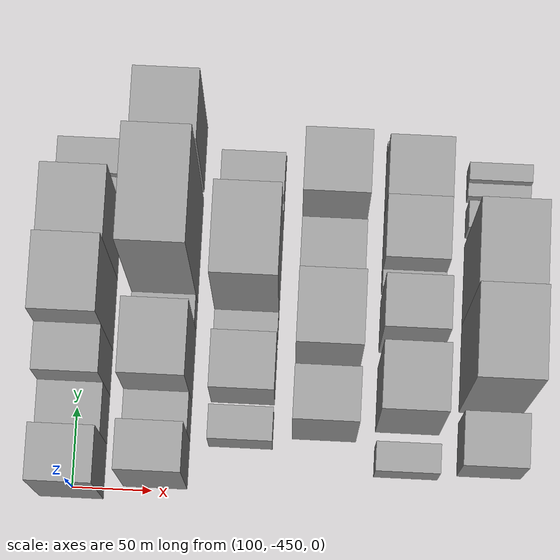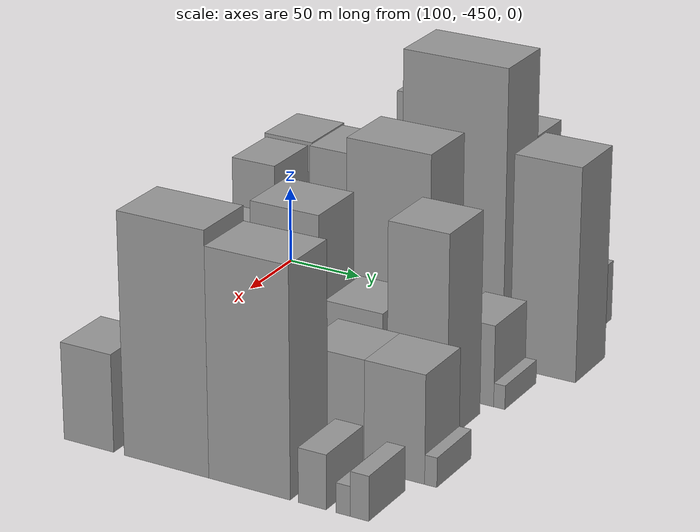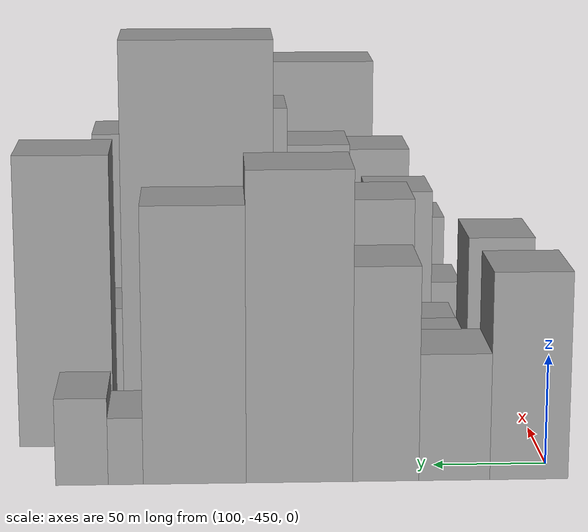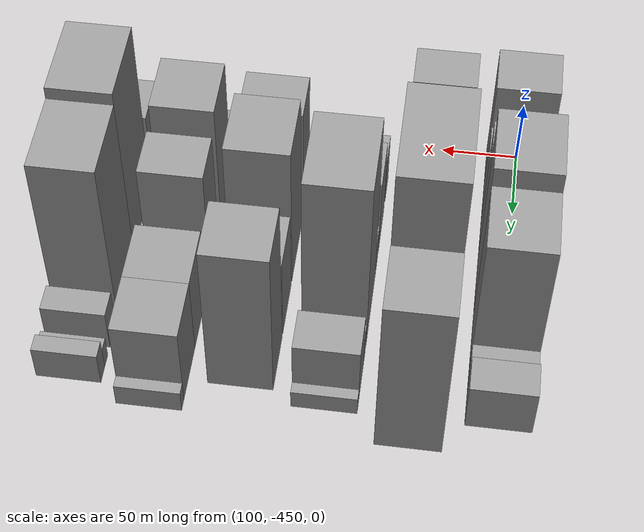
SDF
<sdf version="1.6">
 <world name="default">
  <model name="building_13">
   <static>1</static>
   <pose>100.0000 -439.4131 0 0.000000 0.000000 0.000000</pose>
   <link name="link">
    <pose>0 0 46.50 0 0 0</pose>
    <collision name="collision"><geometry><box><size>40.0000 34.2523 93.0000</size></box></geometry></collision>
    <visual name="visual">
     <cast_shadows>0</cast_shadows>
     <geometry><box><size>40.0000 34.2523 93.0000</size></box></geometry>
     <material>
      <script>
       <uri>model://grey_wall/materials/scripts</uri>
       <uri>model://grey_wall/materials/textures</uri>
       <name>vrc/grey_wall</name>
      </script>
     </material>
    </visual>
   </link>
  </model>
  <model name="building_14">
   <static>1</static>
   <pose>100.0000 -406.8225 0 0.000000 0.000000 0.000000</pose>
   <link name="link">
    <pose>0 0 28.50 0 0 0</pose>
    <collision name="collision"><geometry><box><size>40.0000 30.9290 57.0000</size></box></geometry></collision>
    <visual name="visual">
     <cast_shadows>0</cast_shadows>
     <geometry><box><size>40.0000 30.9290 57.0000</size></box></geometry>
     <material>
      <script>
       <uri>model://grey_wall/materials/scripts</uri>
       <uri>model://grey_wall/materials/textures</uri>
       <name>vrc/grey_wall</name>
      </script>
     </material>
    </visual>
   </link>
  </model>
  <model name="building_15">
   <static>1</static>
   <pose>100.0000 -376.9256 0 0.000000 0.000000 0.000000</pose>
   <link name="link">
    <pose>0 0 48.00 0 0 0</pose>
    <collision name="collision"><geometry><box><size>40.0000 28.8647 96.0000</size></box></geometry></collision>
    <visual name="visual">
     <cast_shadows>0</cast_shadows>
     <geometry><box><size>40.0000 28.8647 96.0000</size></box></geometry>
     <material>
      <script>
       <uri>model://grey_wall/materials/scripts</uri>
       <uri>model://grey_wall/materials/textures</uri>
       <name>vrc/grey_wall</name>
      </script>
     </material>
    </visual>
   </link>
  </model>
  <model name="building_16">
   <static>1</static>
   <pose>100.0000 -339.4239 0 0.000000 0.000000 0.000000</pose>
   <link name="link">
    <pose>0 0 69.00 0 0 0</pose>
    <collision name="collision"><geometry><box><size>40.0000 46.1388 138.0000</size></box></geometry></collision>
    <visual name="visual">
     <cast_shadows>0</cast_shadows>
     <geometry><box><size>40.0000 46.1388 138.0000</size></box></geometry>
     <material>
      <script>
       <uri>model://grey_wall/materials/scripts</uri>
       <uri>model://grey_wall/materials/textures</uri>
       <name>vrc/grey_wall</name>
      </script>
     </material>
    </visual>
   </link>
  </model>
  <model name="building_17">
   <static>1</static>
   <pose>100.0000 -294.0704 0 0.000000 0.000000 0.000000</pose>
   <link name="link">
    <pose>0 0 61.50 0 0 0</pose>
    <collision name="collision"><geometry><box><size>40.0000 44.5682 123.0000</size></box></geometry></collision>
    <visual name="visual">
     <cast_shadows>0</cast_shadows>
     <geometry><box><size>40.0000 44.5682 123.0000</size></box></geometry>
     <material>
      <script>
       <uri>model://grey_wall/materials/scripts</uri>
       <uri>model://grey_wall/materials/textures</uri>
       <name>vrc/grey_wall</name>
      </script>
     </material>
    </visual>
   </link>
  </model>
  <model name="building_18">
   <static>1</static>
   <pose>100.0000 -264.2371 0 0.000000 0.000000 0.000000</pose>
   <link name="link">
    <pose>0 0 15.00 0 0 0</pose>
    <collision name="collision"><geometry><box><size>40.0000 15.0983 30.0000</size></box></geometry></collision>
    <visual name="visual">
     <cast_shadows>0</cast_shadows>
     <geometry><box><size>40.0000 15.0983 30.0000</size></box></geometry>
     <material>
      <script>
       <uri>model://grey_wall/materials/scripts</uri>
       <uri>model://grey_wall/materials/textures</uri>
       <name>vrc/grey_wall</name>
      </script>
     </material>
    </visual>
   </link>
  </model>
  <model name="building_19">
   <static>1</static>
   <pose>100.0000 -245.3737 0 0.000000 0.000000 0.000000</pose>
   <link name="link">
    <pose>0 0 19.50 0 0 0</pose>
    <collision name="collision"><geometry><box><size>40.0000 22.6286 39.0000</size></box></geometry></collision>
    <visual name="visual">
     <cast_shadows>0</cast_shadows>
     <geometry><box><size>40.0000 22.6286 39.0000</size></box></geometry>
     <material>
      <script>
       <uri>model://grey_wall/materials/scripts</uri>
       <uri>model://grey_wall/materials/textures</uri>
       <name>vrc/grey_wall</name>
      </script>
     </material>
    </visual>
   </link>
  </model>
  <model name="building_64">
   <static>1</static>
   <pose>152.0000 -432.9958 0 0.000000 0.000000 0.000000</pose>
   <link name="link">
    <pose>0 0 48.00 0 0 0</pose>
    <collision name="collision"><geometry><box><size>40.0000 29.9902 96.0000</size></box></geometry></collision>
    <visual name="visual">
     <cast_shadows>0</cast_shadows>
     <geometry><box><size>40.0000 29.9902 96.0000</size></box></geometry>
     <material>
      <script>
       <uri>model://grey_wall/materials/scripts</uri>
       <uri>model://grey_wall/materials/textures</uri>
       <name>vrc/grey_wall</name>
      </script>
     </material>
    </visual>
   </link>
  </model>
  <model name="building_65">
   <static>1</static>
   <pose>152.0000 -405.6965 0 0.000000 0.000000 0.000000</pose>
   <link name="link">
    <pose>0 0 24.00 0 0 0</pose>
    <collision name="collision"><geometry><box><size>40.0000 24.6084 48.0000</size></box></geometry></collision>
    <visual name="visual">
     <cast_shadows>0</cast_shadows>
     <geometry><box><size>40.0000 24.6084 48.0000</size></box></geometry>
     <material>
      <script>
       <uri>model://grey_wall/materials/scripts</uri>
       <uri>model://grey_wall/materials/textures</uri>
       <name>vrc/grey_wall</name>
      </script>
     </material>
    </visual>
   </link>
  </model>
  <model name="building_66">
   <static>1</static>
   <pose>152.0000 -370.7849 0 0.000000 0.000000 0.000000</pose>
   <link name="link">
    <pose>0 0 57.00 0 0 0</pose>
    <collision name="collision"><geometry><box><size>40.0000 45.2149 114.0000</size></box></geometry></collision>
    <visual name="visual">
     <cast_shadows>0</cast_shadows>
     <geometry><box><size>40.0000 45.2149 114.0000</size></box></geometry>
     <material>
      <script>
       <uri>model://grey_wall/materials/scripts</uri>
       <uri>model://grey_wall/materials/textures</uri>
       <name>vrc/grey_wall</name>
      </script>
     </material>
    </visual>
   </link>
  </model>
  <model name="building_67">
   <static>1</static>
   <pose>152.0000 -339.0721 0 0.000000 0.000000 0.000000</pose>
   <link name="link">
    <pose>0 0 16.50 0 0 0</pose>
    <collision name="collision"><geometry><box><size>40.0000 18.2106 33.0000</size></box></geometry></collision>
    <visual name="visual">
     <cast_shadows>0</cast_shadows>
     <geometry><box><size>40.0000 18.2106 33.0000</size></box></geometry>
     <material>
      <script>
       <uri>model://grey_wall/materials/scripts</uri>
       <uri>model://grey_wall/materials/textures</uri>
       <name>vrc/grey_wall</name>
      </script>
     </material>
    </visual>
   </link>
  </model>
  <model name="building_68">
   <static>1</static>
   <pose>152.0000 -295.9075 0 0.000000 0.000000 0.000000</pose>
   <link name="link">
    <pose>0 0 93.00 0 0 0</pose>
    <collision name="collision"><geometry><box><size>40.0000 68.1185 186.0000</size></box></geometry></collision>
    <visual name="visual">
     <cast_shadows>0</cast_shadows>
     <geometry><box><size>40.0000 68.1185 186.0000</size></box></geometry>
     <material>
      <script>
       <uri>model://grey_wall/materials/scripts</uri>
       <uri>model://grey_wall/materials/textures</uri>
       <name>vrc/grey_wall</name>
      </script>
     </material>
    </visual>
   </link>
  </model>
  <model name="building_69">
   <static>1</static>
   <pose>152.0000 -235.4173 0 0.000000 0.000000 0.000000</pose>
   <link name="link">
    <pose>0 0 67.50 0 0 0</pose>
    <collision name="collision"><geometry><box><size>40.0000 42.8620 135.0000</size></box></geometry></collision>
    <visual name="visual">
     <cast_shadows>0</cast_shadows>
     <geometry><box><size>40.0000 42.8620 135.0000</size></box></geometry>
     <material>
      <script>
       <uri>model://grey_wall/materials/scripts</uri>
       <uri>model://grey_wall/materials/textures</uri>
       <name>vrc/grey_wall</name>
      </script>
     </material>
    </visual>
   </link>
  </model>
  <model name="building_111">
   <static>1</static>
   <pose>204.0000 -409.7591 0 0.000000 0.000000 0.000000</pose>
   <link name="link">
    <pose>0 0 21.00 0 0 0</pose>
    <collision name="collision"><geometry><box><size>40.0000 21.1142 42.0000</size></box></geometry></collision>
    <visual name="visual">
     <cast_shadows>0</cast_shadows>
     <geometry><box><size>40.0000 21.1142 42.0000</size></box></geometry>
     <material>
      <script>
       <uri>model://grey_wall/materials/scripts</uri>
       <uri>model://grey_wall/materials/textures</uri>
       <name>vrc/grey_wall</name>
      </script>
     </material>
    </visual>
   </link>
  </model>
  <model name="building_112">
   <static>1</static>
   <pose>204.0000 -374.4851 0 0.000000 0.000000 0.000000</pose>
   <link name="link">
    <pose>0 0 33.00 0 0 0</pose>
    <collision name="collision"><geometry><box><size>40.0000 35.4338 66.0000</size></box></geometry></collision>
    <visual name="visual">
     <cast_shadows>0</cast_shadows>
     <geometry><box><size>40.0000 35.4338 66.0000</size></box></geometry>
     <material>
      <script>
       <uri>model://grey_wall/materials/scripts</uri>
       <uri>model://grey_wall/materials/textures</uri>
       <name>vrc/grey_wall</name>
      </script>
     </material>
    </visual>
   </link>
  </model>
  <model name="building_113">
   <static>1</static>
   <pose>204.0000 -345.9222 0 0.000000 0.000000 0.000000</pose>
   <link name="link">
    <pose>0 0 15.00 0 0 0</pose>
    <collision name="collision"><geometry><box><size>40.0000 15.6921 30.0000</size></box></geometry></collision>
    <visual name="visual">
     <cast_shadows>0</cast_shadows>
     <geometry><box><size>40.0000 15.6921 30.0000</size></box></geometry>
     <material>
      <script>
       <uri>model://grey_wall/materials/scripts</uri>
       <uri>model://grey_wall/materials/textures</uri>
       <name>vrc/grey_wall</name>
      </script>
     </material>
    </visual>
   </link>
  </model>
  <model name="building_114">
   <static>1</static>
   <pose>204.0000 -310.6812 0 0.000000 0.000000 0.000000</pose>
   <link name="link">
    <pose>0 0 73.50 0 0 0</pose>
    <collision name="collision"><geometry><box><size>40.0000 54.7898 147.0000</size></box></geometry></collision>
    <visual name="visual">
     <cast_shadows>0</cast_shadows>
     <geometry><box><size>40.0000 54.7898 147.0000</size></box></geometry>
     <material>
      <script>
       <uri>model://grey_wall/materials/scripts</uri>
       <uri>model://grey_wall/materials/textures</uri>
       <name>vrc/grey_wall</name>
      </script>
     </material>
    </visual>
   </link>
  </model>
  <model name="building_115">
   <static>1</static>
   <pose>204.0000 -273.6183 0 0.000000 0.000000 0.000000</pose>
   <link name="link">
    <pose>0 0 13.50 0 0 0</pose>
    <collision name="collision"><geometry><box><size>40.0000 11.3360 27.0000</size></box></geometry></collision>
    <visual name="visual">
     <cast_shadows>0</cast_shadows>
     <geometry><box><size>40.0000 11.3360 27.0000</size></box></geometry>
     <material>
      <script>
       <uri>model://grey_wall/materials/scripts</uri>
       <uri>model://grey_wall/materials/textures</uri>
       <name>vrc/grey_wall</name>
      </script>
     </material>
    </visual>
   </link>
  </model>
  <model name="building_116">
   <static>1</static>
   <pose>204.0000 -254.4349 0 0.000000 0.000000 0.000000</pose>
   <link name="link">
    <pose>0 0 25.50 0 0 0</pose>
    <collision name="collision"><geometry><box><size>40.0000 27.0309 51.0000</size></box></geometry></collision>
    <visual name="visual">
     <cast_shadows>0</cast_shadows>
     <geometry><box><size>40.0000 27.0309 51.0000</size></box></geometry>
     <material>
      <script>
       <uri>model://grey_wall/materials/scripts</uri>
       <uri>model://grey_wall/materials/textures</uri>
       <name>vrc/grey_wall</name>
      </script>
     </material>
    </visual>
   </link>
  </model>
  <model name="building_117">
   <static>1</static>
   <pose>204.0000 -237.3028 0 0.000000 0.000000 0.000000</pose>
   <link name="link">
    <pose>0 0 7.50 0 0 0</pose>
    <collision name="collision"><geometry><box><size>40.0000 7.2334 15.0000</size></box></geometry></collision>
    <visual name="visual">
     <cast_shadows>0</cast_shadows>
     <geometry><box><size>40.0000 7.2334 15.0000</size></box></geometry>
     <material>
      <script>
       <uri>model://grey_wall/materials/scripts</uri>
       <uri>model://grey_wall/materials/textures</uri>
       <name>vrc/grey_wall</name>
      </script>
     </material>
    </visual>
   </link>
  </model>
  <model name="building_158">
   <static>1</static>
   <pose>256.0000 -396.6729 0 0.000000 0.000000 0.000000</pose>
   <link name="link">
    <pose>0 0 48.00 0 0 0</pose>
    <collision name="collision"><geometry><box><size>40.0000 32.8960 96.0000</size></box></geometry></collision>
    <visual name="visual">
     <cast_shadows>0</cast_shadows>
     <geometry><box><size>40.0000 32.8960 96.0000</size></box></geometry>
     <material>
      <script>
       <uri>model://grey_wall/materials/scripts</uri>
       <uri>model://grey_wall/materials/textures</uri>
       <name>vrc/grey_wall</name>
      </script>
     </material>
    </visual>
   </link>
  </model>
  <model name="building_159">
   <static>1</static>
   <pose>256.0000 -348.8127 0 0.000000 0.000000 0.000000</pose>
   <link name="link">
    <pose>0 0 60.00 0 0 0</pose>
    <collision name="collision"><geometry><box><size>40.0000 44.8244 120.0000</size></box></geometry></collision>
    <visual name="visual">
     <cast_shadows>0</cast_shadows>
     <geometry><box><size>40.0000 44.8244 120.0000</size></box></geometry>
     <material>
      <script>
       <uri>model://grey_wall/materials/scripts</uri>
       <uri>model://grey_wall/materials/textures</uri>
       <name>vrc/grey_wall</name>
      </script>
     </material>
    </visual>
   </link>
  </model>
  <model name="building_160">
   <static>1</static>
   <pose>256.0000 -303.7201 0 0.000000 0.000000 0.000000</pose>
   <link name="link">
    <pose>0 0 34.50 0 0 0</pose>
    <collision name="collision"><geometry><box><size>40.0000 37.3608 69.0000</size></box></geometry></collision>
    <visual name="visual">
     <cast_shadows>0</cast_shadows>
     <geometry><box><size>40.0000 37.3608 69.0000</size></box></geometry>
     <material>
      <script>
       <uri>model://grey_wall/materials/scripts</uri>
       <uri>model://grey_wall/materials/textures</uri>
       <name>vrc/grey_wall</name>
      </script>
     </material>
    </visual>
   </link>
  </model>
  <model name="building_161">
   <static>1</static>
   <pose>256.0000 -262.8356 0 0.000000 0.000000 0.000000</pose>
   <link name="link">
    <pose>0 0 63.00 0 0 0</pose>
    <collision name="collision"><geometry><box><size>40.0000 38.4083 126.0000</size></box></geometry></collision>
    <visual name="visual">
     <cast_shadows>0</cast_shadows>
     <geometry><box><size>40.0000 38.4083 126.0000</size></box></geometry>
     <material>
      <script>
       <uri>model://grey_wall/materials/scripts</uri>
       <uri>model://grey_wall/materials/textures</uri>
       <name>vrc/grey_wall</name>
      </script>
     </material>
    </visual>
   </link>
  </model>
  <model name="building_210">
   <static>1</static>
   <pose>308.0000 -425.3955 0 0.000000 0.000000 0.000000</pose>
   <link name="link">
    <pose>0 0 18.00 0 0 0</pose>
    <collision name="collision"><geometry><box><size>40.0000 18.3359 36.0000</size></box></geometry></collision>
    <visual name="visual">
     <cast_shadows>0</cast_shadows>
     <geometry><box><size>40.0000 18.3359 36.0000</size></box></geometry>
     <material>
      <script>
       <uri>model://grey_wall/materials/scripts</uri>
       <uri>model://grey_wall/materials/textures</uri>
       <name>vrc/grey_wall</name>
      </script>
     </material>
    </visual>
   </link>
  </model>
  <model name="building_211">
   <static>1</static>
   <pose>308.0000 -385.7775 0 0.000000 0.000000 0.000000</pose>
   <link name="link">
    <pose>0 0 54.00 0 0 0</pose>
    <collision name="collision"><geometry><box><size>40.0000 40.8999 108.0000</size></box></geometry></collision>
    <visual name="visual">
     <cast_shadows>0</cast_shadows>
     <geometry><box><size>40.0000 40.8999 108.0000</size></box></geometry>
     <material>
      <script>
       <uri>model://grey_wall/materials/scripts</uri>
       <uri>model://grey_wall/materials/textures</uri>
       <name>vrc/grey_wall</name>
      </script>
     </material>
    </visual>
   </link>
  </model>
  <model name="building_212">
   <static>1</static>
   <pose>308.0000 -339.1281 0 0.000000 0.000000 0.000000</pose>
   <link name="link">
    <pose>0 0 48.00 0 0 0</pose>
    <collision name="collision"><geometry><box><size>40.0000 32.3989 96.0000</size></box></geometry></collision>
    <visual name="visual">
     <cast_shadows>0</cast_shadows>
     <geometry><box><size>40.0000 32.3989 96.0000</size></box></geometry>
     <material>
      <script>
       <uri>model://grey_wall/materials/scripts</uri>
       <uri>model://grey_wall/materials/textures</uri>
       <name>vrc/grey_wall</name>
      </script>
     </material>
    </visual>
   </link>
  </model>
  <model name="building_213">
   <static>1</static>
   <pose>308.0000 -312.3981 0 0.000000 0.000000 0.000000</pose>
   <link name="link">
    <pose>0 0 13.50 0 0 0</pose>
    <collision name="collision"><geometry><box><size>40.0000 11.0612 27.0000</size></box></geometry></collision>
    <visual name="visual">
     <cast_shadows>0</cast_shadows>
     <geometry><box><size>40.0000 11.0612 27.0000</size></box></geometry>
     <material>
      <script>
       <uri>model://grey_wall/materials/scripts</uri>
       <uri>model://grey_wall/materials/textures</uri>
       <name>vrc/grey_wall</name>
      </script>
     </material>
    </visual>
   </link>
  </model>
  <model name="building_214">
   <static>1</static>
   <pose>308.0000 -287.2141 0 0.000000 0.000000 0.000000</pose>
   <link name="link">
    <pose>0 0 33.00 0 0 0</pose>
    <collision name="collision"><geometry><box><size>40.0000 39.3068 66.0000</size></box></geometry></collision>
    <visual name="visual">
     <cast_shadows>0</cast_shadows>
     <geometry><box><size>40.0000 39.3068 66.0000</size></box></geometry>
     <material>
      <script>
       <uri>model://grey_wall/materials/scripts</uri>
       <uri>model://grey_wall/materials/textures</uri>
       <name>vrc/grey_wall</name>
      </script>
     </material>
    </visual>
   </link>
  </model>
  <model name="building_215">
   <static>1</static>
   <pose>308.0000 -248.6320 0 0.000000 0.000000 0.000000</pose>
   <link name="link">
    <pose>0 0 33.00 0 0 0</pose>
    <collision name="collision"><geometry><box><size>40.0000 37.8575 66.0000</size></box></geometry></collision>
    <visual name="visual">
     <cast_shadows>0</cast_shadows>
     <geometry><box><size>40.0000 37.8575 66.0000</size></box></geometry>
     <material>
      <script>
       <uri>model://grey_wall/materials/scripts</uri>
       <uri>model://grey_wall/materials/textures</uri>
       <name>vrc/grey_wall</name>
      </script>
     </material>
    </visual>
   </link>
  </model>
  <model name="building_216">
   <static>1</static>
   <pose>308.0000 -225.9107 0 0.000000 0.000000 0.000000</pose>
   <link name="link">
    <pose>0 0 9.00 0 0 0</pose>
    <collision name="collision"><geometry><box><size>40.0000 7.5851 18.0000</size></box></geometry></collision>
    <visual name="visual">
     <cast_shadows>0</cast_shadows>
     <geometry><box><size>40.0000 7.5851 18.0000</size></box></geometry>
     <material>
      <script>
       <uri>model://grey_wall/materials/scripts</uri>
       <uri>model://grey_wall/materials/textures</uri>
       <name>vrc/grey_wall</name>
      </script>
     </material>
    </visual>
   </link>
  </model>
  <model name="building_259">
   <static>1</static>
   <pose>360.0000 -414.8213 0 0.000000 0.000000 0.000000</pose>
   <link name="link">
    <pose>0 0 30.00 0 0 0</pose>
    <collision name="collision"><geometry><box><size>40.0000 33.4049 60.0000</size></box></geometry></collision>
    <visual name="visual">
     <cast_shadows>0</cast_shadows>
     <geometry><box><size>40.0000 33.4049 60.0000</size></box></geometry>
     <material>
      <script>
       <uri>model://grey_wall/materials/scripts</uri>
       <uri>model://grey_wall/materials/textures</uri>
       <name>vrc/grey_wall</name>
      </script>
     </material>
    </visual>
   </link>
  </model>
  <model name="building_260">
   <static>1</static>
   <pose>360.0000 -363.4066 0 0.000000 0.000000 0.000000</pose>
   <link name="link">
    <pose>0 0 73.50 0 0 0</pose>
    <collision name="collision"><geometry><box><size>40.0000 55.4244 147.0000</size></box></geometry></collision>
    <visual name="visual">
     <cast_shadows>0</cast_shadows>
     <geometry><box><size>40.0000 55.4244 147.0000</size></box></geometry>
     <material>
      <script>
       <uri>model://grey_wall/materials/scripts</uri>
       <uri>model://grey_wall/materials/textures</uri>
       <name>vrc/grey_wall</name>
      </script>
     </material>
    </visual>
   </link>
  </model>
  <model name="building_261">
   <static>1</static>
   <pose>360.0000 -309.7651 0 0.000000 0.000000 0.000000</pose>
   <link name="link">
    <pose>0 0 69.00 0 0 0</pose>
    <collision name="collision"><geometry><box><size>40.0000 51.8586 138.0000</size></box></geometry></collision>
    <visual name="visual">
     <cast_shadows>0</cast_shadows>
     <geometry><box><size>40.0000 51.8586 138.0000</size></box></geometry>
     <material>
      <script>
       <uri>model://grey_wall/materials/scripts</uri>
       <uri>model://grey_wall/materials/textures</uri>
       <name>vrc/grey_wall</name>
      </script>
     </material>
    </visual>
   </link>
  </model>
  <model name="building_262">
   <static>1</static>
   <pose>360.0000 -270.1277 0 0.000000 0.000000 0.000000</pose>
   <link name="link">
    <pose>0 0 16.50 0 0 0</pose>
    <collision name="collision"><geometry><box><size>40.0000 17.4163 33.0000</size></box></geometry></collision>
    <visual name="visual">
     <cast_shadows>0</cast_shadows>
     <geometry><box><size>40.0000 17.4163 33.0000</size></box></geometry>
     <material>
      <script>
       <uri>model://grey_wall/materials/scripts</uri>
       <uri>model://grey_wall/materials/textures</uri>
       <name>vrc/grey_wall</name>
      </script>
     </material>
    </visual>
   </link>
  </model>
  <model name="building_263">
   <static>1</static>
   <pose>360.0000 -251.0175 0 0.000000 0.000000 0.000000</pose>
   <link name="link">
    <pose>0 0 9.00 0 0 0</pose>
    <collision name="collision"><geometry><box><size>40.0000 8.8040 18.0000</size></box></geometry></collision>
    <visual name="visual">
     <cast_shadows>0</cast_shadows>
     <geometry><box><size>40.0000 8.8040 18.0000</size></box></geometry>
     <material>
      <script>
       <uri>model://grey_wall/materials/scripts</uri>
       <uri>model://grey_wall/materials/textures</uri>
       <name>vrc/grey_wall</name>
      </script>
     </material>
    </visual>
   </link>
  </model>
  <model name="building_264">
   <static>1</static>
   <pose>360.0000 -240.9426 0 0.000000 0.000000 0.000000</pose>
   <link name="link">
    <pose>0 0 13.50 0 0 0</pose>
    <collision name="collision"><geometry><box><size>40.0000 11.3458 27.0000</size></box></geometry></collision>
    <visual name="visual">
     <cast_shadows>0</cast_shadows>
     <geometry><box><size>40.0000 11.3458 27.0000</size></box></geometry>
     <material>
      <script>
       <uri>model://grey_wall/materials/scripts</uri>
       <uri>model://grey_wall/materials/textures</uri>
       <name>vrc/grey_wall</name>
      </script>
     </material>
    </visual>
   </link>
  </model>
 </world>
</sdf>
